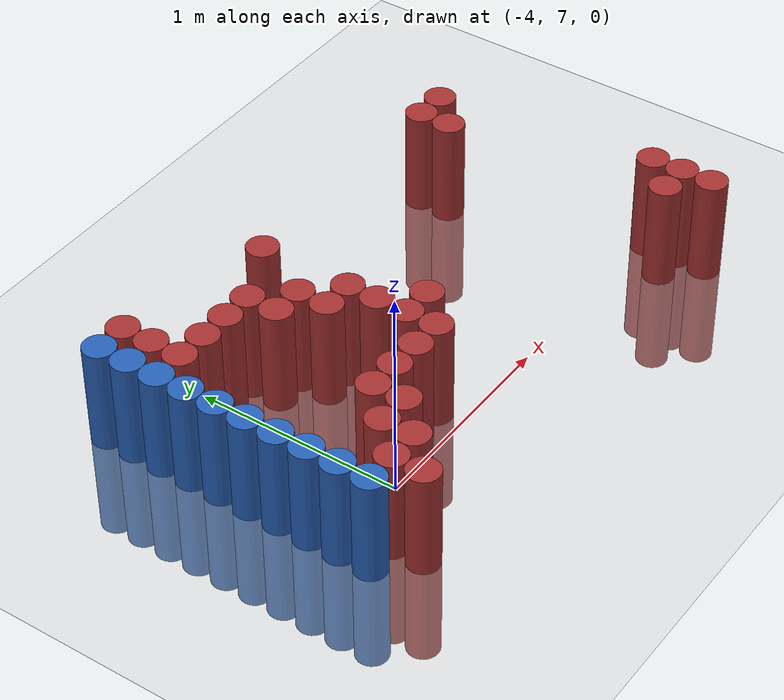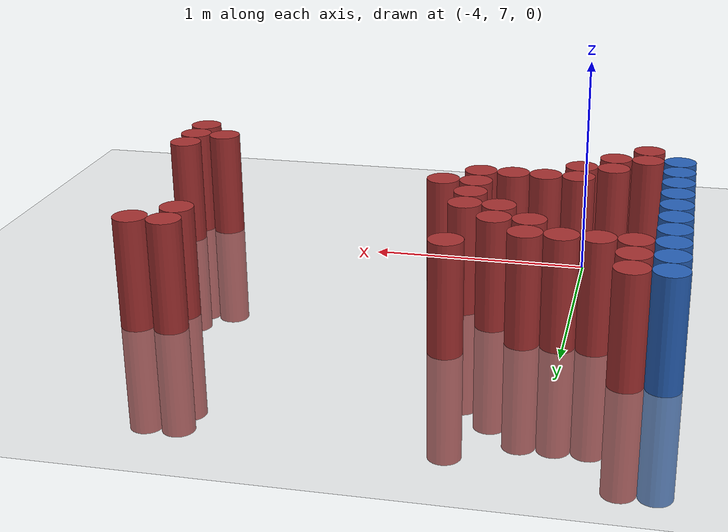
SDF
<sdf version="1.6">
 <world name="default">
  <model name="ground_plane">
   <static>1</static>
   <link name="link">
    <collision name="collision">
     <geometry><plane><normal>0 0 1</normal><size>100 100</size></plane></geometry>
     <surface><friction><ode><mu>100</mu><mu2>50</mu2></ode></friction></surface>
    </collision>
    <visual name="visual">
     <cast_shadows>0</cast_shadows>
     <geometry><plane><normal>0 0 1</normal><size>100 100</size></plane></geometry>
     <material>
      <script><uri>file://media/materials/scripts/gazebo.material</uri><name>Gazebo/Grey</name></script>
     </material>
    </visual>
   </link>
  </model>
  <model name="unit_cylinder_107">
   <static>1</static>
   <pose>-4.425000 6.825000 0.000000 0.000000 0.000000 0.000000</pose>
   <link name="link">
    <inertial>
     <mass>1</mass>
     <inertia><ixx>0.145833</ixx><ixy>0</ixy><ixz>0</ixz><iyy>0.145833</iyy><iyz>0</iyz><izz>0.125</izz></inertia>
    </inertial>
    <collision name="collision">
     <geometry><cylinder><radius>0.075000</radius><length>1</length></cylinder></geometry>
    </collision>
    <visual name="visual">
     <geometry><cylinder><radius>0.075000</radius><length>1</length></cylinder></geometry>
     <material>
      <ambient>0.152000 0.379000 0.720000 1</ambient>
      <diffuse>0.152000 0.379000 0.720000 1</diffuse>
     </material>
     <material>
      <script><name>Gazebo/Grey</name><uri>file://media/materials/scripts/gazebo.material</uri></script>
     </material>
    </visual>
    <sensor name="sensor_contact" type="contact"><contact><collision>collision</collision></contact></sensor>
   </link>
   <plugin filename="gz-sim-touchplugin-system" name="gz::sim::systems::TouchPlugin">
    <target>robot</target>
    <namespace>robot</namespace>
    <time>0.001</time>
    <enabled>true</enabled>
   </plugin>
  </model>
  <model name="unit_cylinder_108">
   <static>1</static>
   <pose>-4.425000 6.975000 0.000000 0.000000 0.000000 0.000000</pose>
   <link name="link">
    <inertial>
     <mass>1</mass>
     <inertia><ixx>0.145833</ixx><ixy>0</ixy><ixz>0</ixz><iyy>0.145833</iyy><iyz>0</iyz><izz>0.125</izz></inertia>
    </inertial>
    <collision name="collision">
     <geometry><cylinder><radius>0.075000</radius><length>1</length></cylinder></geometry>
    </collision>
    <visual name="visual">
     <geometry><cylinder><radius>0.075000</radius><length>1</length></cylinder></geometry>
     <material>
      <ambient>0.152000 0.379000 0.720000 1</ambient>
      <diffuse>0.152000 0.379000 0.720000 1</diffuse>
     </material>
     <material>
      <script><name>Gazebo/Grey</name><uri>file://media/materials/scripts/gazebo.material</uri></script>
     </material>
    </visual>
    <sensor name="sensor_contact" type="contact"><contact><collision>collision</collision></contact></sensor>
   </link>
   <plugin filename="gz-sim-touchplugin-system" name="gz::sim::systems::TouchPlugin">
    <target>robot</target>
    <namespace>robot</namespace>
    <time>0.001</time>
    <enabled>true</enabled>
   </plugin>
  </model>
  <model name="unit_cylinder_109">
   <static>1</static>
   <pose>-4.425000 7.125000 0.000000 0.000000 0.000000 0.000000</pose>
   <link name="link">
    <inertial>
     <mass>1</mass>
     <inertia><ixx>0.145833</ixx><ixy>0</ixy><ixz>0</ixz><iyy>0.145833</iyy><iyz>0</iyz><izz>0.125</izz></inertia>
    </inertial>
    <collision name="collision">
     <geometry><cylinder><radius>0.075000</radius><length>1</length></cylinder></geometry>
    </collision>
    <visual name="visual">
     <geometry><cylinder><radius>0.075000</radius><length>1</length></cylinder></geometry>
     <material>
      <ambient>0.152000 0.379000 0.720000 1</ambient>
      <diffuse>0.152000 0.379000 0.720000 1</diffuse>
     </material>
     <material>
      <script><name>Gazebo/Grey</name><uri>file://media/materials/scripts/gazebo.material</uri></script>
     </material>
    </visual>
    <sensor name="sensor_contact" type="contact"><contact><collision>collision</collision></contact></sensor>
   </link>
   <plugin filename="gz-sim-touchplugin-system" name="gz::sim::systems::TouchPlugin">
    <target>robot</target>
    <namespace>robot</namespace>
    <time>0.001</time>
    <enabled>true</enabled>
   </plugin>
  </model>
  <model name="unit_cylinder_110">
   <static>1</static>
   <pose>-4.425000 7.275000 0.000000 0.000000 0.000000 0.000000</pose>
   <link name="link">
    <inertial>
     <mass>1</mass>
     <inertia><ixx>0.145833</ixx><ixy>0</ixy><ixz>0</ixz><iyy>0.145833</iyy><iyz>0</iyz><izz>0.125</izz></inertia>
    </inertial>
    <collision name="collision">
     <geometry><cylinder><radius>0.075000</radius><length>1</length></cylinder></geometry>
    </collision>
    <visual name="visual">
     <geometry><cylinder><radius>0.075000</radius><length>1</length></cylinder></geometry>
     <material>
      <ambient>0.152000 0.379000 0.720000 1</ambient>
      <diffuse>0.152000 0.379000 0.720000 1</diffuse>
     </material>
     <material>
      <script><name>Gazebo/Grey</name><uri>file://media/materials/scripts/gazebo.material</uri></script>
     </material>
    </visual>
    <sensor name="sensor_contact" type="contact"><contact><collision>collision</collision></contact></sensor>
   </link>
   <plugin filename="gz-sim-touchplugin-system" name="gz::sim::systems::TouchPlugin">
    <target>robot</target>
    <namespace>robot</namespace>
    <time>0.001</time>
    <enabled>true</enabled>
   </plugin>
  </model>
  <model name="unit_cylinder_111">
   <static>1</static>
   <pose>-4.425000 7.425000 0.000000 0.000000 0.000000 0.000000</pose>
   <link name="link">
    <inertial>
     <mass>1</mass>
     <inertia><ixx>0.145833</ixx><ixy>0</ixy><ixz>0</ixz><iyy>0.145833</iyy><iyz>0</iyz><izz>0.125</izz></inertia>
    </inertial>
    <collision name="collision">
     <geometry><cylinder><radius>0.075000</radius><length>1</length></cylinder></geometry>
    </collision>
    <visual name="visual">
     <geometry><cylinder><radius>0.075000</radius><length>1</length></cylinder></geometry>
     <material>
      <ambient>0.152000 0.379000 0.720000 1</ambient>
      <diffuse>0.152000 0.379000 0.720000 1</diffuse>
     </material>
     <material>
      <script><name>Gazebo/Grey</name><uri>file://media/materials/scripts/gazebo.material</uri></script>
     </material>
    </visual>
    <sensor name="sensor_contact" type="contact"><contact><collision>collision</collision></contact></sensor>
   </link>
   <plugin filename="gz-sim-touchplugin-system" name="gz::sim::systems::TouchPlugin">
    <target>robot</target>
    <namespace>robot</namespace>
    <time>0.001</time>
    <enabled>true</enabled>
   </plugin>
  </model>
  <model name="unit_cylinder_112">
   <static>1</static>
   <pose>-4.425000 7.575000 0.000000 0.000000 0.000000 0.000000</pose>
   <link name="link">
    <inertial>
     <mass>1</mass>
     <inertia><ixx>0.145833</ixx><ixy>0</ixy><ixz>0</ixz><iyy>0.145833</iyy><iyz>0</iyz><izz>0.125</izz></inertia>
    </inertial>
    <collision name="collision">
     <geometry><cylinder><radius>0.075000</radius><length>1</length></cylinder></geometry>
    </collision>
    <visual name="visual">
     <geometry><cylinder><radius>0.075000</radius><length>1</length></cylinder></geometry>
     <material>
      <ambient>0.152000 0.379000 0.720000 1</ambient>
      <diffuse>0.152000 0.379000 0.720000 1</diffuse>
     </material>
     <material>
      <script><name>Gazebo/Grey</name><uri>file://media/materials/scripts/gazebo.material</uri></script>
     </material>
    </visual>
    <sensor name="sensor_contact" type="contact"><contact><collision>collision</collision></contact></sensor>
   </link>
   <plugin filename="gz-sim-touchplugin-system" name="gz::sim::systems::TouchPlugin">
    <target>robot</target>
    <namespace>robot</namespace>
    <time>0.001</time>
    <enabled>true</enabled>
   </plugin>
  </model>
  <model name="unit_cylinder_113">
   <static>1</static>
   <pose>-4.425000 7.725000 0.000000 0.000000 0.000000 0.000000</pose>
   <link name="link">
    <inertial>
     <mass>1</mass>
     <inertia><ixx>0.145833</ixx><ixy>0</ixy><ixz>0</ixz><iyy>0.145833</iyy><iyz>0</iyz><izz>0.125</izz></inertia>
    </inertial>
    <collision name="collision">
     <geometry><cylinder><radius>0.075000</radius><length>1</length></cylinder></geometry>
    </collision>
    <visual name="visual">
     <geometry><cylinder><radius>0.075000</radius><length>1</length></cylinder></geometry>
     <material>
      <ambient>0.152000 0.379000 0.720000 1</ambient>
      <diffuse>0.152000 0.379000 0.720000 1</diffuse>
     </material>
     <material>
      <script><name>Gazebo/Grey</name><uri>file://media/materials/scripts/gazebo.material</uri></script>
     </material>
    </visual>
    <sensor name="sensor_contact" type="contact"><contact><collision>collision</collision></contact></sensor>
   </link>
   <plugin filename="gz-sim-touchplugin-system" name="gz::sim::systems::TouchPlugin">
    <target>robot</target>
    <namespace>robot</namespace>
    <time>0.001</time>
    <enabled>true</enabled>
   </plugin>
  </model>
  <model name="unit_cylinder_114">
   <static>1</static>
   <pose>-4.425000 7.875000 0.000000 0.000000 0.000000 0.000000</pose>
   <link name="link">
    <inertial>
     <mass>1</mass>
     <inertia><ixx>0.145833</ixx><ixy>0</ixy><ixz>0</ixz><iyy>0.145833</iyy><iyz>0</iyz><izz>0.125</izz></inertia>
    </inertial>
    <collision name="collision">
     <geometry><cylinder><radius>0.075000</radius><length>1</length></cylinder></geometry>
    </collision>
    <visual name="visual">
     <geometry><cylinder><radius>0.075000</radius><length>1</length></cylinder></geometry>
     <material>
      <ambient>0.152000 0.379000 0.720000 1</ambient>
      <diffuse>0.152000 0.379000 0.720000 1</diffuse>
     </material>
     <material>
      <script><name>Gazebo/Grey</name><uri>file://media/materials/scripts/gazebo.material</uri></script>
     </material>
    </visual>
    <sensor name="sensor_contact" type="contact"><contact><collision>collision</collision></contact></sensor>
   </link>
   <plugin filename="gz-sim-touchplugin-system" name="gz::sim::systems::TouchPlugin">
    <target>robot</target>
    <namespace>robot</namespace>
    <time>0.001</time>
    <enabled>true</enabled>
   </plugin>
  </model>
  <model name="unit_cylinder_115">
   <static>1</static>
   <pose>-4.425000 8.025000 0.000000 0.000000 0.000000 0.000000</pose>
   <link name="link">
    <inertial>
     <mass>1</mass>
     <inertia><ixx>0.145833</ixx><ixy>0</ixy><ixz>0</ixz><iyy>0.145833</iyy><iyz>0</iyz><izz>0.125</izz></inertia>
    </inertial>
    <collision name="collision">
     <geometry><cylinder><radius>0.075000</radius><length>1</length></cylinder></geometry>
    </collision>
    <visual name="visual">
     <geometry><cylinder><radius>0.075000</radius><length>1</length></cylinder></geometry>
     <material>
      <ambient>0.152000 0.379000 0.720000 1</ambient>
      <diffuse>0.152000 0.379000 0.720000 1</diffuse>
     </material>
     <material>
      <script><name>Gazebo/Grey</name><uri>file://media/materials/scripts/gazebo.material</uri></script>
     </material>
    </visual>
    <sensor name="sensor_contact" type="contact"><contact><collision>collision</collision></contact></sensor>
   </link>
   <plugin filename="gz-sim-touchplugin-system" name="gz::sim::systems::TouchPlugin">
    <target>robot</target>
    <namespace>robot</namespace>
    <time>0.001</time>
    <enabled>true</enabled>
   </plugin>
  </model>
  <model name="unit_cylinder_116">
   <static>1</static>
   <pose>-4.425000 8.175000 0.000000 0.000000 0.000000 0.000000</pose>
   <link name="link">
    <inertial>
     <mass>1</mass>
     <inertia><ixx>0.145833</ixx><ixy>0</ixy><ixz>0</ixz><iyy>0.145833</iyy><iyz>0</iyz><izz>0.125</izz></inertia>
    </inertial>
    <collision name="collision">
     <geometry><cylinder><radius>0.075000</radius><length>1</length></cylinder></geometry>
    </collision>
    <visual name="visual">
     <geometry><cylinder><radius>0.075000</radius><length>1</length></cylinder></geometry>
     <material>
      <ambient>0.152000 0.379000 0.720000 1</ambient>
      <diffuse>0.152000 0.379000 0.720000 1</diffuse>
     </material>
     <material>
      <script><name>Gazebo/Grey</name><uri>file://media/materials/scripts/gazebo.material</uri></script>
     </material>
    </visual>
    <sensor name="sensor_contact" type="contact"><contact><collision>collision</collision></contact></sensor>
   </link>
   <plugin filename="gz-sim-touchplugin-system" name="gz::sim::systems::TouchPlugin">
    <target>robot</target>
    <namespace>robot</namespace>
    <time>0.001</time>
    <enabled>true</enabled>
   </plugin>
  </model>
  <model name="unit_cylinder_132">
   <static>1</static>
   <pose>-4.275000 6.675000 0.000000 0.000000 0.000000 0.000000</pose>
   <link name="link">
    <inertial>
     <mass>1</mass>
     <inertia><ixx>0.145833</ixx><ixy>0</ixy><ixz>0</ixz><iyy>0.145833</iyy><iyz>0</iyz><izz>0.125</izz></inertia>
    </inertial>
    <collision name="collision">
     <geometry><cylinder><radius>0.075000</radius><length>1</length></cylinder></geometry>
    </collision>
    <visual name="visual">
     <geometry><cylinder><radius>0.075000</radius><length>1</length></cylinder></geometry>
     <material>
      <ambient>0.648000 0.192000 0.192000 1</ambient>
      <diffuse>0.648000 0.192000 0.192000 1</diffuse>
     </material>
     <material>
      <script><name>Gazebo/Grey</name><uri>file://media/materials/scripts/gazebo.material</uri></script>
     </material>
    </visual>
    <sensor name="sensor_contact" type="contact"><contact><collision>collision</collision></contact></sensor>
   </link>
   <plugin filename="gz-sim-touchplugin-system" name="gz::sim::systems::TouchPlugin">
    <target>robot</target>
    <namespace>robot</namespace>
    <time>0.001</time>
    <enabled>true</enabled>
   </plugin>
  </model>
  <model name="unit_cylinder_133">
   <static>1</static>
   <pose>-4.275000 6.825000 0.000000 0.000000 0.000000 0.000000</pose>
   <link name="link">
    <inertial>
     <mass>1</mass>
     <inertia><ixx>0.145833</ixx><ixy>0</ixy><ixz>0</ixz><iyy>0.145833</iyy><iyz>0</iyz><izz>0.125</izz></inertia>
    </inertial>
    <collision name="collision">
     <geometry><cylinder><radius>0.075000</radius><length>1</length></cylinder></geometry>
    </collision>
    <visual name="visual">
     <geometry><cylinder><radius>0.075000</radius><length>1</length></cylinder></geometry>
     <material>
      <ambient>0.648000 0.192000 0.192000 1</ambient>
      <diffuse>0.648000 0.192000 0.192000 1</diffuse>
     </material>
     <material>
      <script><name>Gazebo/Grey</name><uri>file://media/materials/scripts/gazebo.material</uri></script>
     </material>
    </visual>
    <sensor name="sensor_contact" type="contact"><contact><collision>collision</collision></contact></sensor>
   </link>
   <plugin filename="gz-sim-touchplugin-system" name="gz::sim::systems::TouchPlugin">
    <target>robot</target>
    <namespace>robot</namespace>
    <time>0.001</time>
    <enabled>true</enabled>
   </plugin>
  </model>
  <model name="unit_cylinder_134">
   <static>1</static>
   <pose>-4.275000 7.875000 0.000000 0.000000 0.000000 0.000000</pose>
   <link name="link">
    <inertial>
     <mass>1</mass>
     <inertia><ixx>0.145833</ixx><ixy>0</ixy><ixz>0</ixz><iyy>0.145833</iyy><iyz>0</iyz><izz>0.125</izz></inertia>
    </inertial>
    <collision name="collision">
     <geometry><cylinder><radius>0.075000</radius><length>1</length></cylinder></geometry>
    </collision>
    <visual name="visual">
     <geometry><cylinder><radius>0.075000</radius><length>1</length></cylinder></geometry>
     <material>
      <ambient>0.648000 0.192000 0.192000 1</ambient>
      <diffuse>0.648000 0.192000 0.192000 1</diffuse>
     </material>
     <material>
      <script><name>Gazebo/Grey</name><uri>file://media/materials/scripts/gazebo.material</uri></script>
     </material>
    </visual>
    <sensor name="sensor_contact" type="contact"><contact><collision>collision</collision></contact></sensor>
   </link>
   <plugin filename="gz-sim-touchplugin-system" name="gz::sim::systems::TouchPlugin">
    <target>robot</target>
    <namespace>robot</namespace>
    <time>0.001</time>
    <enabled>true</enabled>
   </plugin>
  </model>
  <model name="unit_cylinder_135">
   <static>1</static>
   <pose>-4.275000 8.025000 0.000000 0.000000 0.000000 0.000000</pose>
   <link name="link">
    <inertial>
     <mass>1</mass>
     <inertia><ixx>0.145833</ixx><ixy>0</ixy><ixz>0</ixz><iyy>0.145833</iyy><iyz>0</iyz><izz>0.125</izz></inertia>
    </inertial>
    <collision name="collision">
     <geometry><cylinder><radius>0.075000</radius><length>1</length></cylinder></geometry>
    </collision>
    <visual name="visual">
     <geometry><cylinder><radius>0.075000</radius><length>1</length></cylinder></geometry>
     <material>
      <ambient>0.648000 0.192000 0.192000 1</ambient>
      <diffuse>0.648000 0.192000 0.192000 1</diffuse>
     </material>
     <material>
      <script><name>Gazebo/Grey</name><uri>file://media/materials/scripts/gazebo.material</uri></script>
     </material>
    </visual>
    <sensor name="sensor_contact" type="contact"><contact><collision>collision</collision></contact></sensor>
   </link>
   <plugin filename="gz-sim-touchplugin-system" name="gz::sim::systems::TouchPlugin">
    <target>robot</target>
    <namespace>robot</namespace>
    <time>0.001</time>
    <enabled>true</enabled>
   </plugin>
  </model>
  <model name="unit_cylinder_136">
   <static>1</static>
   <pose>-4.275000 8.175000 0.000000 0.000000 0.000000 0.000000</pose>
   <link name="link">
    <inertial>
     <mass>1</mass>
     <inertia><ixx>0.145833</ixx><ixy>0</ixy><ixz>0</ixz><iyy>0.145833</iyy><iyz>0</iyz><izz>0.125</izz></inertia>
    </inertial>
    <collision name="collision">
     <geometry><cylinder><radius>0.075000</radius><length>1</length></cylinder></geometry>
    </collision>
    <visual name="visual">
     <geometry><cylinder><radius>0.075000</radius><length>1</length></cylinder></geometry>
     <material>
      <ambient>0.648000 0.192000 0.192000 1</ambient>
      <diffuse>0.648000 0.192000 0.192000 1</diffuse>
     </material>
     <material>
      <script><name>Gazebo/Grey</name><uri>file://media/materials/scripts/gazebo.material</uri></script>
     </material>
    </visual>
    <sensor name="sensor_contact" type="contact"><contact><collision>collision</collision></contact></sensor>
   </link>
   <plugin filename="gz-sim-touchplugin-system" name="gz::sim::systems::TouchPlugin">
    <target>robot</target>
    <namespace>robot</namespace>
    <time>0.001</time>
    <enabled>true</enabled>
   </plugin>
  </model>
  <model name="unit_cylinder_144">
   <static>1</static>
   <pose>-4.125000 6.825000 0.000000 0.000000 0.000000 0.000000</pose>
   <link name="link">
    <inertial>
     <mass>1</mass>
     <inertia><ixx>0.145833</ixx><ixy>0</ixy><ixz>0</ixz><iyy>0.145833</iyy><iyz>0</iyz><izz>0.125</izz></inertia>
    </inertial>
    <collision name="collision">
     <geometry><cylinder><radius>0.075000</radius><length>1</length></cylinder></geometry>
    </collision>
    <visual name="visual">
     <geometry><cylinder><radius>0.075000</radius><length>1</length></cylinder></geometry>
     <material>
      <ambient>0.648000 0.192000 0.192000 1</ambient>
      <diffuse>0.648000 0.192000 0.192000 1</diffuse>
     </material>
     <material>
      <script><name>Gazebo/Grey</name><uri>file://media/materials/scripts/gazebo.material</uri></script>
     </material>
    </visual>
    <sensor name="sensor_contact" type="contact"><contact><collision>collision</collision></contact></sensor>
   </link>
   <plugin filename="gz-sim-touchplugin-system" name="gz::sim::systems::TouchPlugin">
    <target>robot</target>
    <namespace>robot</namespace>
    <time>0.001</time>
    <enabled>true</enabled>
   </plugin>
  </model>
  <model name="unit_cylinder_145">
   <static>1</static>
   <pose>-4.125000 6.975000 0.000000 0.000000 0.000000 0.000000</pose>
   <link name="link">
    <inertial>
     <mass>1</mass>
     <inertia><ixx>0.145833</ixx><ixy>0</ixy><ixz>0</ixz><iyy>0.145833</iyy><iyz>0</iyz><izz>0.125</izz></inertia>
    </inertial>
    <collision name="collision">
     <geometry><cylinder><radius>0.075000</radius><length>1</length></cylinder></geometry>
    </collision>
    <visual name="visual">
     <geometry><cylinder><radius>0.075000</radius><length>1</length></cylinder></geometry>
     <material>
      <ambient>0.648000 0.192000 0.192000 1</ambient>
      <diffuse>0.648000 0.192000 0.192000 1</diffuse>
     </material>
     <material>
      <script><name>Gazebo/Grey</name><uri>file://media/materials/scripts/gazebo.material</uri></script>
     </material>
    </visual>
    <sensor name="sensor_contact" type="contact"><contact><collision>collision</collision></contact></sensor>
   </link>
   <plugin filename="gz-sim-touchplugin-system" name="gz::sim::systems::TouchPlugin">
    <target>robot</target>
    <namespace>robot</namespace>
    <time>0.001</time>
    <enabled>true</enabled>
   </plugin>
  </model>
  <model name="unit_cylinder_146">
   <static>1</static>
   <pose>-4.125000 7.875000 0.000000 0.000000 0.000000 0.000000</pose>
   <link name="link">
    <inertial>
     <mass>1</mass>
     <inertia><ixx>0.145833</ixx><ixy>0</ixy><ixz>0</ixz><iyy>0.145833</iyy><iyz>0</iyz><izz>0.125</izz></inertia>
    </inertial>
    <collision name="collision">
     <geometry><cylinder><radius>0.075000</radius><length>1</length></cylinder></geometry>
    </collision>
    <visual name="visual">
     <geometry><cylinder><radius>0.075000</radius><length>1</length></cylinder></geometry>
     <material>
      <ambient>0.648000 0.192000 0.192000 1</ambient>
      <diffuse>0.648000 0.192000 0.192000 1</diffuse>
     </material>
     <material>
      <script><name>Gazebo/Grey</name><uri>file://media/materials/scripts/gazebo.material</uri></script>
     </material>
    </visual>
    <sensor name="sensor_contact" type="contact"><contact><collision>collision</collision></contact></sensor>
   </link>
   <plugin filename="gz-sim-touchplugin-system" name="gz::sim::systems::TouchPlugin">
    <target>robot</target>
    <namespace>robot</namespace>
    <time>0.001</time>
    <enabled>true</enabled>
   </plugin>
  </model>
  <model name="unit_cylinder_150">
   <static>1</static>
   <pose>-3.975000 6.975000 0.000000 0.000000 0.000000 0.000000</pose>
   <link name="link">
    <inertial>
     <mass>1</mass>
     <inertia><ixx>0.145833</ixx><ixy>0</ixy><ixz>0</ixz><iyy>0.145833</iyy><iyz>0</iyz><izz>0.125</izz></inertia>
    </inertial>
    <collision name="collision">
     <geometry><cylinder><radius>0.075000</radius><length>1</length></cylinder></geometry>
    </collision>
    <visual name="visual">
     <geometry><cylinder><radius>0.075000</radius><length>1</length></cylinder></geometry>
     <material>
      <ambient>0.648000 0.192000 0.192000 1</ambient>
      <diffuse>0.648000 0.192000 0.192000 1</diffuse>
     </material>
     <material>
      <script><name>Gazebo/Grey</name><uri>file://media/materials/scripts/gazebo.material</uri></script>
     </material>
    </visual>
    <sensor name="sensor_contact" type="contact"><contact><collision>collision</collision></contact></sensor>
   </link>
   <plugin filename="gz-sim-touchplugin-system" name="gz::sim::systems::TouchPlugin">
    <target>robot</target>
    <namespace>robot</namespace>
    <time>0.001</time>
    <enabled>true</enabled>
   </plugin>
  </model>
  <model name="unit_cylinder_151">
   <static>1</static>
   <pose>-3.975000 7.125000 0.000000 0.000000 0.000000 0.000000</pose>
   <link name="link">
    <inertial>
     <mass>1</mass>
     <inertia><ixx>0.145833</ixx><ixy>0</ixy><ixz>0</ixz><iyy>0.145833</iyy><iyz>0</iyz><izz>0.125</izz></inertia>
    </inertial>
    <collision name="collision">
     <geometry><cylinder><radius>0.075000</radius><length>1</length></cylinder></geometry>
    </collision>
    <visual name="visual">
     <geometry><cylinder><radius>0.075000</radius><length>1</length></cylinder></geometry>
     <material>
      <ambient>0.648000 0.192000 0.192000 1</ambient>
      <diffuse>0.648000 0.192000 0.192000 1</diffuse>
     </material>
     <material>
      <script><name>Gazebo/Grey</name><uri>file://media/materials/scripts/gazebo.material</uri></script>
     </material>
    </visual>
    <sensor name="sensor_contact" type="contact"><contact><collision>collision</collision></contact></sensor>
   </link>
   <plugin filename="gz-sim-touchplugin-system" name="gz::sim::systems::TouchPlugin">
    <target>robot</target>
    <namespace>robot</namespace>
    <time>0.001</time>
    <enabled>true</enabled>
   </plugin>
  </model>
  <model name="unit_cylinder_152">
   <static>1</static>
   <pose>-3.975000 7.875000 0.000000 0.000000 0.000000 0.000000</pose>
   <link name="link">
    <inertial>
     <mass>1</mass>
     <inertia><ixx>0.145833</ixx><ixy>0</ixy><ixz>0</ixz><iyy>0.145833</iyy><iyz>0</iyz><izz>0.125</izz></inertia>
    </inertial>
    <collision name="collision">
     <geometry><cylinder><radius>0.075000</radius><length>1</length></cylinder></geometry>
    </collision>
    <visual name="visual">
     <geometry><cylinder><radius>0.075000</radius><length>1</length></cylinder></geometry>
     <material>
      <ambient>0.648000 0.192000 0.192000 1</ambient>
      <diffuse>0.648000 0.192000 0.192000 1</diffuse>
     </material>
     <material>
      <script><name>Gazebo/Grey</name><uri>file://media/materials/scripts/gazebo.material</uri></script>
     </material>
    </visual>
    <sensor name="sensor_contact" type="contact"><contact><collision>collision</collision></contact></sensor>
   </link>
   <plugin filename="gz-sim-touchplugin-system" name="gz::sim::systems::TouchPlugin">
    <target>robot</target>
    <namespace>robot</namespace>
    <time>0.001</time>
    <enabled>true</enabled>
   </plugin>
  </model>
  <model name="unit_cylinder_158">
   <static>1</static>
   <pose>-3.825000 7.125000 0.000000 0.000000 0.000000 0.000000</pose>
   <link name="link">
    <inertial>
     <mass>1</mass>
     <inertia><ixx>0.145833</ixx><ixy>0</ixy><ixz>0</ixz><iyy>0.145833</iyy><iyz>0</iyz><izz>0.125</izz></inertia>
    </inertial>
    <collision name="collision">
     <geometry><cylinder><radius>0.075000</radius><length>1</length></cylinder></geometry>
    </collision>
    <visual name="visual">
     <geometry><cylinder><radius>0.075000</radius><length>1</length></cylinder></geometry>
     <material>
      <ambient>0.648000 0.192000 0.192000 1</ambient>
      <diffuse>0.648000 0.192000 0.192000 1</diffuse>
     </material>
     <material>
      <script><name>Gazebo/Grey</name><uri>file://media/materials/scripts/gazebo.material</uri></script>
     </material>
    </visual>
    <sensor name="sensor_contact" type="contact"><contact><collision>collision</collision></contact></sensor>
   </link>
   <plugin filename="gz-sim-touchplugin-system" name="gz::sim::systems::TouchPlugin">
    <target>robot</target>
    <namespace>robot</namespace>
    <time>0.001</time>
    <enabled>true</enabled>
   </plugin>
  </model>
  <model name="unit_cylinder_159">
   <static>1</static>
   <pose>-3.825000 7.725000 0.000000 0.000000 0.000000 0.000000</pose>
   <link name="link">
    <inertial>
     <mass>1</mass>
     <inertia><ixx>0.145833</ixx><ixy>0</ixy><ixz>0</ixz><iyy>0.145833</iyy><iyz>0</iyz><izz>0.125</izz></inertia>
    </inertial>
    <collision name="collision">
     <geometry><cylinder><radius>0.075000</radius><length>1</length></cylinder></geometry>
    </collision>
    <visual name="visual">
     <geometry><cylinder><radius>0.075000</radius><length>1</length></cylinder></geometry>
     <material>
      <ambient>0.648000 0.192000 0.192000 1</ambient>
      <diffuse>0.648000 0.192000 0.192000 1</diffuse>
     </material>
     <material>
      <script><name>Gazebo/Grey</name><uri>file://media/materials/scripts/gazebo.material</uri></script>
     </material>
    </visual>
    <sensor name="sensor_contact" type="contact"><contact><collision>collision</collision></contact></sensor>
   </link>
   <plugin filename="gz-sim-touchplugin-system" name="gz::sim::systems::TouchPlugin">
    <target>robot</target>
    <namespace>robot</namespace>
    <time>0.001</time>
    <enabled>true</enabled>
   </plugin>
  </model>
  <model name="unit_cylinder_160">
   <static>1</static>
   <pose>-3.825000 7.875000 0.000000 0.000000 0.000000 0.000000</pose>
   <link name="link">
    <inertial>
     <mass>1</mass>
     <inertia><ixx>0.145833</ixx><ixy>0</ixy><ixz>0</ixz><iyy>0.145833</iyy><iyz>0</iyz><izz>0.125</izz></inertia>
    </inertial>
    <collision name="collision">
     <geometry><cylinder><radius>0.075000</radius><length>1</length></cylinder></geometry>
    </collision>
    <visual name="visual">
     <geometry><cylinder><radius>0.075000</radius><length>1</length></cylinder></geometry>
     <material>
      <ambient>0.648000 0.192000 0.192000 1</ambient>
      <diffuse>0.648000 0.192000 0.192000 1</diffuse>
     </material>
     <material>
      <script><name>Gazebo/Grey</name><uri>file://media/materials/scripts/gazebo.material</uri></script>
     </material>
    </visual>
    <sensor name="sensor_contact" type="contact"><contact><collision>collision</collision></contact></sensor>
   </link>
   <plugin filename="gz-sim-touchplugin-system" name="gz::sim::systems::TouchPlugin">
    <target>robot</target>
    <namespace>robot</namespace>
    <time>0.001</time>
    <enabled>true</enabled>
   </plugin>
  </model>
  <model name="unit_cylinder_166">
   <static>1</static>
   <pose>-3.675000 7.125000 0.000000 0.000000 0.000000 0.000000</pose>
   <link name="link">
    <inertial>
     <mass>1</mass>
     <inertia><ixx>0.145833</ixx><ixy>0</ixy><ixz>0</ixz><iyy>0.145833</iyy><iyz>0</iyz><izz>0.125</izz></inertia>
    </inertial>
    <collision name="collision">
     <geometry><cylinder><radius>0.075000</radius><length>1</length></cylinder></geometry>
    </collision>
    <visual name="visual">
     <geometry><cylinder><radius>0.075000</radius><length>1</length></cylinder></geometry>
     <material>
      <ambient>0.648000 0.192000 0.192000 1</ambient>
      <diffuse>0.648000 0.192000 0.192000 1</diffuse>
     </material>
     <material>
      <script><name>Gazebo/Grey</name><uri>file://media/materials/scripts/gazebo.material</uri></script>
     </material>
    </visual>
    <sensor name="sensor_contact" type="contact"><contact><collision>collision</collision></contact></sensor>
   </link>
   <plugin filename="gz-sim-touchplugin-system" name="gz::sim::systems::TouchPlugin">
    <target>robot</target>
    <namespace>robot</namespace>
    <time>0.001</time>
    <enabled>true</enabled>
   </plugin>
  </model>
  <model name="unit_cylinder_167">
   <static>1</static>
   <pose>-3.675000 7.575000 0.000000 0.000000 0.000000 0.000000</pose>
   <link name="link">
    <inertial>
     <mass>1</mass>
     <inertia><ixx>0.145833</ixx><ixy>0</ixy><ixz>0</ixz><iyy>0.145833</iyy><iyz>0</iyz><izz>0.125</izz></inertia>
    </inertial>
    <collision name="collision">
     <geometry><cylinder><radius>0.075000</radius><length>1</length></cylinder></geometry>
    </collision>
    <visual name="visual">
     <geometry><cylinder><radius>0.075000</radius><length>1</length></cylinder></geometry>
     <material>
      <ambient>0.648000 0.192000 0.192000 1</ambient>
      <diffuse>0.648000 0.192000 0.192000 1</diffuse>
     </material>
     <material>
      <script><name>Gazebo/Grey</name><uri>file://media/materials/scripts/gazebo.material</uri></script>
     </material>
    </visual>
    <sensor name="sensor_contact" type="contact"><contact><collision>collision</collision></contact></sensor>
   </link>
   <plugin filename="gz-sim-touchplugin-system" name="gz::sim::systems::TouchPlugin">
    <target>robot</target>
    <namespace>robot</namespace>
    <time>0.001</time>
    <enabled>true</enabled>
   </plugin>
  </model>
  <model name="unit_cylinder_168">
   <static>1</static>
   <pose>-3.675000 7.725000 0.000000 0.000000 0.000000 0.000000</pose>
   <link name="link">
    <inertial>
     <mass>1</mass>
     <inertia><ixx>0.145833</ixx><ixy>0</ixy><ixz>0</ixz><iyy>0.145833</iyy><iyz>0</iyz><izz>0.125</izz></inertia>
    </inertial>
    <collision name="collision">
     <geometry><cylinder><radius>0.075000</radius><length>1</length></cylinder></geometry>
    </collision>
    <visual name="visual">
     <geometry><cylinder><radius>0.075000</radius><length>1</length></cylinder></geometry>
     <material>
      <ambient>0.648000 0.192000 0.192000 1</ambient>
      <diffuse>0.648000 0.192000 0.192000 1</diffuse>
     </material>
     <material>
      <script><name>Gazebo/Grey</name><uri>file://media/materials/scripts/gazebo.material</uri></script>
     </material>
    </visual>
    <sensor name="sensor_contact" type="contact"><contact><collision>collision</collision></contact></sensor>
   </link>
   <plugin filename="gz-sim-touchplugin-system" name="gz::sim::systems::TouchPlugin">
    <target>robot</target>
    <namespace>robot</namespace>
    <time>0.001</time>
    <enabled>true</enabled>
   </plugin>
  </model>
  <model name="unit_cylinder_175">
   <static>1</static>
   <pose>-3.525000 7.125000 0.000000 0.000000 0.000000 0.000000</pose>
   <link name="link">
    <inertial>
     <mass>1</mass>
     <inertia><ixx>0.145833</ixx><ixy>0</ixy><ixz>0</ixz><iyy>0.145833</iyy><iyz>0</iyz><izz>0.125</izz></inertia>
    </inertial>
    <collision name="collision">
     <geometry><cylinder><radius>0.075000</radius><length>1</length></cylinder></geometry>
    </collision>
    <visual name="visual">
     <geometry><cylinder><radius>0.075000</radius><length>1</length></cylinder></geometry>
     <material>
      <ambient>0.648000 0.192000 0.192000 1</ambient>
      <diffuse>0.648000 0.192000 0.192000 1</diffuse>
     </material>
     <material>
      <script><name>Gazebo/Grey</name><uri>file://media/materials/scripts/gazebo.material</uri></script>
     </material>
    </visual>
    <sensor name="sensor_contact" type="contact"><contact><collision>collision</collision></contact></sensor>
   </link>
   <plugin filename="gz-sim-touchplugin-system" name="gz::sim::systems::TouchPlugin">
    <target>robot</target>
    <namespace>robot</namespace>
    <time>0.001</time>
    <enabled>true</enabled>
   </plugin>
  </model>
  <model name="unit_cylinder_176">
   <static>1</static>
   <pose>-3.525000 7.275000 0.000000 0.000000 0.000000 0.000000</pose>
   <link name="link">
    <inertial>
     <mass>1</mass>
     <inertia><ixx>0.145833</ixx><ixy>0</ixy><ixz>0</ixz><iyy>0.145833</iyy><iyz>0</iyz><izz>0.125</izz></inertia>
    </inertial>
    <collision name="collision">
     <geometry><cylinder><radius>0.075000</radius><length>1</length></cylinder></geometry>
    </collision>
    <visual name="visual">
     <geometry><cylinder><radius>0.075000</radius><length>1</length></cylinder></geometry>
     <material>
      <ambient>0.648000 0.192000 0.192000 1</ambient>
      <diffuse>0.648000 0.192000 0.192000 1</diffuse>
     </material>
     <material>
      <script><name>Gazebo/Grey</name><uri>file://media/materials/scripts/gazebo.material</uri></script>
     </material>
    </visual>
    <sensor name="sensor_contact" type="contact"><contact><collision>collision</collision></contact></sensor>
   </link>
   <plugin filename="gz-sim-touchplugin-system" name="gz::sim::systems::TouchPlugin">
    <target>robot</target>
    <namespace>robot</namespace>
    <time>0.001</time>
    <enabled>true</enabled>
   </plugin>
  </model>
  <model name="unit_cylinder_177">
   <static>1</static>
   <pose>-3.525000 7.425000 0.000000 0.000000 0.000000 0.000000</pose>
   <link name="link">
    <inertial>
     <mass>1</mass>
     <inertia><ixx>0.145833</ixx><ixy>0</ixy><ixz>0</ixz><iyy>0.145833</iyy><iyz>0</iyz><izz>0.125</izz></inertia>
    </inertial>
    <collision name="collision">
     <geometry><cylinder><radius>0.075000</radius><length>1</length></cylinder></geometry>
    </collision>
    <visual name="visual">
     <geometry><cylinder><radius>0.075000</radius><length>1</length></cylinder></geometry>
     <material>
      <ambient>0.648000 0.192000 0.192000 1</ambient>
      <diffuse>0.648000 0.192000 0.192000 1</diffuse>
     </material>
     <material>
      <script><name>Gazebo/Grey</name><uri>file://media/materials/scripts/gazebo.material</uri></script>
     </material>
    </visual>
    <sensor name="sensor_contact" type="contact"><contact><collision>collision</collision></contact></sensor>
   </link>
   <plugin filename="gz-sim-touchplugin-system" name="gz::sim::systems::TouchPlugin">
    <target>robot</target>
    <namespace>robot</namespace>
    <time>0.001</time>
    <enabled>true</enabled>
   </plugin>
  </model>
  <model name="unit_cylinder_178">
   <static>1</static>
   <pose>-3.525000 7.575000 0.000000 0.000000 0.000000 0.000000</pose>
   <link name="link">
    <inertial>
     <mass>1</mass>
     <inertia><ixx>0.145833</ixx><ixy>0</ixy><ixz>0</ixz><iyy>0.145833</iyy><iyz>0</iyz><izz>0.125</izz></inertia>
    </inertial>
    <collision name="collision">
     <geometry><cylinder><radius>0.075000</radius><length>1</length></cylinder></geometry>
    </collision>
    <visual name="visual">
     <geometry><cylinder><radius>0.075000</radius><length>1</length></cylinder></geometry>
     <material>
      <ambient>0.648000 0.192000 0.192000 1</ambient>
      <diffuse>0.648000 0.192000 0.192000 1</diffuse>
     </material>
     <material>
      <script><name>Gazebo/Grey</name><uri>file://media/materials/scripts/gazebo.material</uri></script>
     </material>
    </visual>
    <sensor name="sensor_contact" type="contact"><contact><collision>collision</collision></contact></sensor>
   </link>
   <plugin filename="gz-sim-touchplugin-system" name="gz::sim::systems::TouchPlugin">
    <target>robot</target>
    <namespace>robot</namespace>
    <time>0.001</time>
    <enabled>true</enabled>
   </plugin>
  </model>
  <model name="unit_cylinder_179">
   <static>1</static>
   <pose>-3.525000 8.025000 0.000000 0.000000 0.000000 0.000000</pose>
   <link name="link">
    <inertial>
     <mass>1</mass>
     <inertia><ixx>0.145833</ixx><ixy>0</ixy><ixz>0</ixz><iyy>0.145833</iyy><iyz>0</iyz><izz>0.125</izz></inertia>
    </inertial>
    <collision name="collision">
     <geometry><cylinder><radius>0.075000</radius><length>1</length></cylinder></geometry>
    </collision>
    <visual name="visual">
     <geometry><cylinder><radius>0.075000</radius><length>1</length></cylinder></geometry>
     <material>
      <ambient>0.648000 0.192000 0.192000 1</ambient>
      <diffuse>0.648000 0.192000 0.192000 1</diffuse>
     </material>
     <material>
      <script><name>Gazebo/Grey</name><uri>file://media/materials/scripts/gazebo.material</uri></script>
     </material>
    </visual>
    <sensor name="sensor_contact" type="contact"><contact><collision>collision</collision></contact></sensor>
   </link>
   <plugin filename="gz-sim-touchplugin-system" name="gz::sim::systems::TouchPlugin">
    <target>robot</target>
    <namespace>robot</namespace>
    <time>0.001</time>
    <enabled>true</enabled>
   </plugin>
  </model>
  <model name="unit_cylinder_183">
   <static>1</static>
   <pose>-3.375000 7.275000 0.000000 0.000000 0.000000 0.000000</pose>
   <link name="link">
    <inertial>
     <mass>1</mass>
     <inertia><ixx>0.145833</ixx><ixy>0</ixy><ixz>0</ixz><iyy>0.145833</iyy><iyz>0</iyz><izz>0.125</izz></inertia>
    </inertial>
    <collision name="collision">
     <geometry><cylinder><radius>0.075000</radius><length>1</length></cylinder></geometry>
    </collision>
    <visual name="visual">
     <geometry><cylinder><radius>0.075000</radius><length>1</length></cylinder></geometry>
     <material>
      <ambient>0.648000 0.192000 0.192000 1</ambient>
      <diffuse>0.648000 0.192000 0.192000 1</diffuse>
     </material>
     <material>
      <script><name>Gazebo/Grey</name><uri>file://media/materials/scripts/gazebo.material</uri></script>
     </material>
    </visual>
    <sensor name="sensor_contact" type="contact"><contact><collision>collision</collision></contact></sensor>
   </link>
   <plugin filename="gz-sim-touchplugin-system" name="gz::sim::systems::TouchPlugin">
    <target>robot</target>
    <namespace>robot</namespace>
    <time>0.001</time>
    <enabled>true</enabled>
   </plugin>
  </model>
  <model name="unit_cylinder_192">
   <static>1</static>
   <pose>-2.325000 7.875000 0.000000 0.000000 0.000000 0.000000</pose>
   <link name="link">
    <inertial>
     <mass>1</mass>
     <inertia><ixx>0.145833</ixx><ixy>0</ixy><ixz>0</ixz><iyy>0.145833</iyy><iyz>0</iyz><izz>0.125</izz></inertia>
    </inertial>
    <collision name="collision">
     <geometry><cylinder><radius>0.075000</radius><length>1</length></cylinder></geometry>
    </collision>
    <visual name="visual">
     <geometry><cylinder><radius>0.075000</radius><length>1</length></cylinder></geometry>
     <material>
      <ambient>0.648000 0.192000 0.192000 1</ambient>
      <diffuse>0.648000 0.192000 0.192000 1</diffuse>
     </material>
     <material>
      <script><name>Gazebo/Grey</name><uri>file://media/materials/scripts/gazebo.material</uri></script>
     </material>
    </visual>
    <sensor name="sensor_contact" type="contact"><contact><collision>collision</collision></contact></sensor>
   </link>
   <plugin filename="gz-sim-touchplugin-system" name="gz::sim::systems::TouchPlugin">
    <target>robot</target>
    <namespace>robot</namespace>
    <time>0.001</time>
    <enabled>true</enabled>
   </plugin>
  </model>
  <model name="unit_cylinder_193">
   <static>1</static>
   <pose>-2.325000 8.025000 0.000000 0.000000 0.000000 0.000000</pose>
   <link name="link">
    <inertial>
     <mass>1</mass>
     <inertia><ixx>0.145833</ixx><ixy>0</ixy><ixz>0</ixz><iyy>0.145833</iyy><iyz>0</iyz><izz>0.125</izz></inertia>
    </inertial>
    <collision name="collision">
     <geometry><cylinder><radius>0.075000</radius><length>1</length></cylinder></geometry>
    </collision>
    <visual name="visual">
     <geometry><cylinder><radius>0.075000</radius><length>1</length></cylinder></geometry>
     <material>
      <ambient>0.648000 0.192000 0.192000 1</ambient>
      <diffuse>0.648000 0.192000 0.192000 1</diffuse>
     </material>
     <material>
      <script><name>Gazebo/Grey</name><uri>file://media/materials/scripts/gazebo.material</uri></script>
     </material>
    </visual>
    <sensor name="sensor_contact" type="contact"><contact><collision>collision</collision></contact></sensor>
   </link>
   <plugin filename="gz-sim-touchplugin-system" name="gz::sim::systems::TouchPlugin">
    <target>robot</target>
    <namespace>robot</namespace>
    <time>0.001</time>
    <enabled>true</enabled>
   </plugin>
  </model>
  <model name="unit_cylinder_198">
   <static>1</static>
   <pose>-2.175000 6.825000 0.000000 0.000000 0.000000 0.000000</pose>
   <link name="link">
    <inertial>
     <mass>1</mass>
     <inertia><ixx>0.145833</ixx><ixy>0</ixy><ixz>0</ixz><iyy>0.145833</iyy><iyz>0</iyz><izz>0.125</izz></inertia>
    </inertial>
    <collision name="collision">
     <geometry><cylinder><radius>0.075000</radius><length>1</length></cylinder></geometry>
    </collision>
    <visual name="visual">
     <geometry><cylinder><radius>0.075000</radius><length>1</length></cylinder></geometry>
     <material>
      <ambient>0.648000 0.192000 0.192000 1</ambient>
      <diffuse>0.648000 0.192000 0.192000 1</diffuse>
     </material>
     <material>
      <script><name>Gazebo/Grey</name><uri>file://media/materials/scripts/gazebo.material</uri></script>
     </material>
    </visual>
    <sensor name="sensor_contact" type="contact"><contact><collision>collision</collision></contact></sensor>
   </link>
   <plugin filename="gz-sim-touchplugin-system" name="gz::sim::systems::TouchPlugin">
    <target>robot</target>
    <namespace>robot</namespace>
    <time>0.001</time>
    <enabled>true</enabled>
   </plugin>
  </model>
  <model name="unit_cylinder_199">
   <static>1</static>
   <pose>-2.175000 8.025000 0.000000 0.000000 0.000000 0.000000</pose>
   <link name="link">
    <inertial>
     <mass>1</mass>
     <inertia><ixx>0.145833</ixx><ixy>0</ixy><ixz>0</ixz><iyy>0.145833</iyy><iyz>0</iyz><izz>0.125</izz></inertia>
    </inertial>
    <collision name="collision">
     <geometry><cylinder><radius>0.075000</radius><length>1</length></cylinder></geometry>
    </collision>
    <visual name="visual">
     <geometry><cylinder><radius>0.075000</radius><length>1</length></cylinder></geometry>
     <material>
      <ambient>0.648000 0.192000 0.192000 1</ambient>
      <diffuse>0.648000 0.192000 0.192000 1</diffuse>
     </material>
     <material>
      <script><name>Gazebo/Grey</name><uri>file://media/materials/scripts/gazebo.material</uri></script>
     </material>
    </visual>
    <sensor name="sensor_contact" type="contact"><contact><collision>collision</collision></contact></sensor>
   </link>
   <plugin filename="gz-sim-touchplugin-system" name="gz::sim::systems::TouchPlugin">
    <target>robot</target>
    <namespace>robot</namespace>
    <time>0.001</time>
    <enabled>true</enabled>
   </plugin>
  </model>
  <model name="unit_cylinder_203">
   <static>1</static>
   <pose>-2.025000 6.675000 0.000000 0.000000 0.000000 0.000000</pose>
   <link name="link">
    <inertial>
     <mass>1</mass>
     <inertia><ixx>0.145833</ixx><ixy>0</ixy><ixz>0</ixz><iyy>0.145833</iyy><iyz>0</iyz><izz>0.125</izz></inertia>
    </inertial>
    <collision name="collision">
     <geometry><cylinder><radius>0.075000</radius><length>1</length></cylinder></geometry>
    </collision>
    <visual name="visual">
     <geometry><cylinder><radius>0.075000</radius><length>1</length></cylinder></geometry>
     <material>
      <ambient>0.648000 0.192000 0.192000 1</ambient>
      <diffuse>0.648000 0.192000 0.192000 1</diffuse>
     </material>
     <material>
      <script><name>Gazebo/Grey</name><uri>file://media/materials/scripts/gazebo.material</uri></script>
     </material>
    </visual>
    <sensor name="sensor_contact" type="contact"><contact><collision>collision</collision></contact></sensor>
   </link>
   <plugin filename="gz-sim-touchplugin-system" name="gz::sim::systems::TouchPlugin">
    <target>robot</target>
    <namespace>robot</namespace>
    <time>0.001</time>
    <enabled>true</enabled>
   </plugin>
  </model>
  <model name="unit_cylinder_204">
   <static>1</static>
   <pose>-2.025000 6.825000 0.000000 0.000000 0.000000 0.000000</pose>
   <link name="link">
    <inertial>
     <mass>1</mass>
     <inertia><ixx>0.145833</ixx><ixy>0</ixy><ixz>0</ixz><iyy>0.145833</iyy><iyz>0</iyz><izz>0.125</izz></inertia>
    </inertial>
    <collision name="collision">
     <geometry><cylinder><radius>0.075000</radius><length>1</length></cylinder></geometry>
    </collision>
    <visual name="visual">
     <geometry><cylinder><radius>0.075000</radius><length>1</length></cylinder></geometry>
     <material>
      <ambient>0.648000 0.192000 0.192000 1</ambient>
      <diffuse>0.648000 0.192000 0.192000 1</diffuse>
     </material>
     <material>
      <script><name>Gazebo/Grey</name><uri>file://media/materials/scripts/gazebo.material</uri></script>
     </material>
    </visual>
    <sensor name="sensor_contact" type="contact"><contact><collision>collision</collision></contact></sensor>
   </link>
   <plugin filename="gz-sim-touchplugin-system" name="gz::sim::systems::TouchPlugin">
    <target>robot</target>
    <namespace>robot</namespace>
    <time>0.001</time>
    <enabled>true</enabled>
   </plugin>
  </model>
  <model name="unit_cylinder_205">
   <static>1</static>
   <pose>-2.025000 6.975000 0.000000 0.000000 0.000000 0.000000</pose>
   <link name="link">
    <inertial>
     <mass>1</mass>
     <inertia><ixx>0.145833</ixx><ixy>0</ixy><ixz>0</ixz><iyy>0.145833</iyy><iyz>0</iyz><izz>0.125</izz></inertia>
    </inertial>
    <collision name="collision">
     <geometry><cylinder><radius>0.075000</radius><length>1</length></cylinder></geometry>
    </collision>
    <visual name="visual">
     <geometry><cylinder><radius>0.075000</radius><length>1</length></cylinder></geometry>
     <material>
      <ambient>0.648000 0.192000 0.192000 1</ambient>
      <diffuse>0.648000 0.192000 0.192000 1</diffuse>
     </material>
     <material>
      <script><name>Gazebo/Grey</name><uri>file://media/materials/scripts/gazebo.material</uri></script>
     </material>
    </visual>
    <sensor name="sensor_contact" type="contact"><contact><collision>collision</collision></contact></sensor>
   </link>
   <plugin filename="gz-sim-touchplugin-system" name="gz::sim::systems::TouchPlugin">
    <target>robot</target>
    <namespace>robot</namespace>
    <time>0.001</time>
    <enabled>true</enabled>
   </plugin>
  </model>
 </world>
</sdf>
